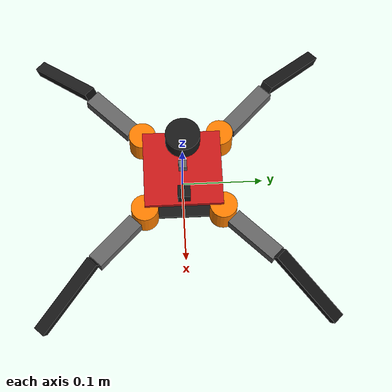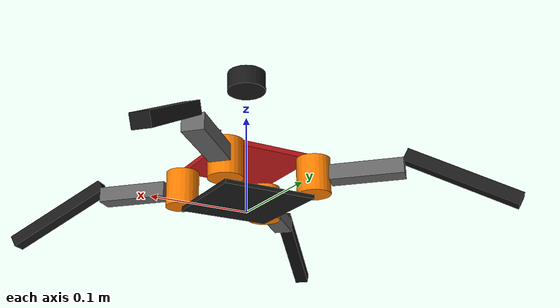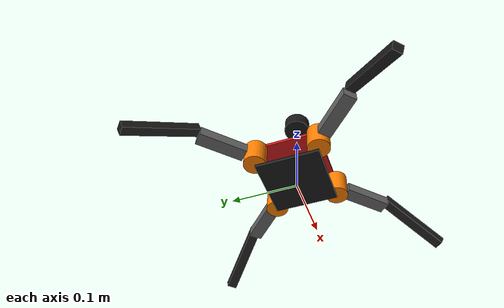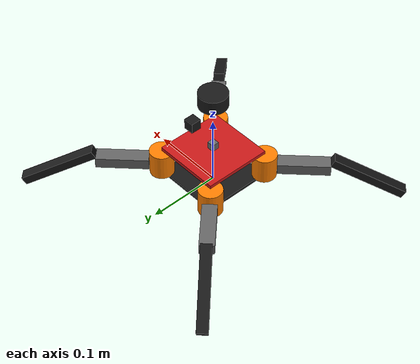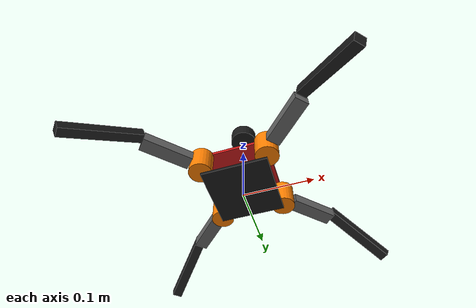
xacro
<?xml version="1.0"?>
<robot name="spider" xmlns:xacro="http://www.ros.org/wiki/xacro">

  <material name="red"><color rgba="0.8 0.1 0.1 1"/></material>
  <material name="black"><color rgba="0.1 0.1 0.1 1"/></material>
  <material name="grey"><color rgba="0.4 0.4 0.4 1"/></material>
  <material name="orange"><color rgba="1 0.5 0 1"/></material>

  <!-- Base footprint with minimal inertial properties -->
  <link name="base_footprint">
    <inertial>
      <mass value="0.001"/>
      <inertia ixx="1e-6" ixy="0" ixz="0" iyy="1e-6" iyz="0" izz="1e-6"/>
    </inertial>
  </link>

  <joint name="base_joint" type="fixed">
    <parent link="base_footprint"/>
    <child link="base_link"/>
    <origin xyz="0 0 0.05" rpy="0 0 0"/>
  </joint>

  <link name="base_link">
    <visual>
      <geometry><box size="0.095 0.095 0.005"/></geometry>
      <material name="red"/>
    </visual>
    <collision>
      <geometry><box size="0.095 0.095 0.005"/></geometry>
    </collision>
    <inertial>
      <mass value="0.3"/>
      <inertia ixx="0.0002" ixy="0" ixz="0" iyy="0.0002" iyz="0" izz="0.0004"/>
    </inertial>
  </link>

  <link name="bottom_plate">
    <visual>
      <geometry><box size="0.095 0.095 0.004"/></geometry>
      <material name="black"/>
    </visual>
    <collision>
      <geometry><box size="0.095 0.095 0.004"/></geometry>
    </collision>
    <inertial>
      <mass value="0.2"/>
      <inertia ixx="0.00015" ixy="0" ixz="0" iyy="0.00015" iyz="0" izz="0.0003"/>
    </inertial>
  </link>

  <joint name="chassis_joint" type="fixed">
    <parent link="base_link"/>
    <child link="bottom_plate"/>
    <origin xyz="0 0 -0.0405" rpy="0 0 0"/>
  </joint>

  <!-- Leg Macro -->
  <xacro:macro name="spider_leg" params="prefix x_dist y_dist yaw_angle">
    <link name="${prefix}_hip">
      <visual>
        <geometry><cylinder radius="0.0165" length="0.036"/></geometry>
        <material name="orange"/>
      </visual>
      <collision>
        <geometry><cylinder radius="0.0165" length="0.036"/></geometry>
      </collision>
      <inertial><mass value="0.05"/><inertia ixx="1e-4" ixy="0" ixz="0" iyy="1e-4" iyz="0" izz="1e-4"/></inertial>
    </link>

    <joint name="${prefix}_hip_yaw" type="revolute">
      <parent link="base_link"/>
      <child link="${prefix}_hip"/>
      <origin xyz="${x_dist} ${y_dist} -0.0205" rpy="0 0 ${yaw_angle}"/>
      <axis xyz="0 0 1"/>
      <limit lower="-1.57" upper="1.57" effort="5.0" velocity="2.0"/>
    </joint>

    <link name="${prefix}_limb">
      <visual>
        <origin xyz="0.035 0 0" rpy="0 0 0"/>
        <geometry><box size="0.07 0.02 0.015"/></geometry>
        <material name="grey"/>
      </visual>
      <collision>
        <origin xyz="0.035 0 0" rpy="0 0 0"/>
        <geometry><box size="0.07 0.02 0.015"/></geometry>
      </collision>
      <inertial><mass value="0.05"/><inertia ixx="1e-4" ixy="0" ixz="0" iyy="1e-4" iyz="0" izz="1e-4"/></inertial>
    </link>

    <joint name="${prefix}_hip_pitch" type="revolute">
      <parent link="${prefix}_hip"/><child link="${prefix}_limb"/>
      <origin xyz="0.0165 0 0" rpy="0 0 0"/>
      <axis xyz="0 1 0"/>
      <limit lower="-1.57" upper="1.57" effort="5.0" velocity="2.0"/>
    </joint>

    <link name="${prefix}_leg">
      <visual>
        <origin xyz="0.05 0 -0.015" rpy="0 0.5 0"/>
        <geometry><box size="0.11 0.015 0.012"/></geometry>
        <material name="black"/>
      </visual>
      <collision>
        <origin xyz="0.05 0 -0.015" rpy="0 0.5 0"/>
        <geometry><box size="0.11 0.015 0.012"/></geometry>
      </collision>
      <inertial><mass value="0.05"/><inertia ixx="1e-4" ixy="0" ixz="0" iyy="1e-4" iyz="0" izz="1e-4"/></inertial>
    </link>

    <joint name="${prefix}_knee" type="revolute">
      <parent link="${prefix}_limb"/><child link="${prefix}_leg"/>
      <origin xyz="0.07 0 0" rpy="0 0 0"/>
      <axis xyz="0 1 0"/>
      <limit lower="-2.5" upper="2.5" effort="5.0" velocity="2.0"/>
    </joint>

    <gazebo reference="${prefix}_leg">
      <mu1>3.0</mu1><mu2>3.0</mu2>
      <kp>1000000.0</kp><kd>10.0</kd>
    </gazebo>
  </xacro:macro>

  <!-- Instantiate 4 legs -->
  <xacro:spider_leg prefix="FL" x_dist="0.0475"  y_dist="0.0475"  yaw_angle="0.785"/>
  <xacro:spider_leg prefix="FR" x_dist="0.0475"  y_dist="-0.0475" yaw_angle="-0.785"/>
  <xacro:spider_leg prefix="RL" x_dist="-0.0475" y_dist="0.0475"  yaw_angle="2.355"/>
  <xacro:spider_leg prefix="RR" x_dist="-0.0475" y_dist="-0.0475" yaw_angle="-2.355"/>

  <!-- Camera -->
  <link name="camera_link">
    <visual>
      <origin xyz="0 0 0" rpy="0 0 0"/>
      <geometry><box size="0.015 0.015 0.015"/></geometry>
      <material name="black"/>
    </visual>
  </link>

  <joint name="camera_joint" type="fixed">
    <parent link="base_link"/>
    <child link="camera_link"/>
    <origin xyz="0.04 0 0.02" rpy="0 0 0"/>
  </joint>

  <gazebo reference="camera_link">
    <sensor type="camera" name="spider_camera">
      <update_rate>30.0</update_rate>
      <visualize>true</visualize>
      <topic>camera/image_raw</topic>
      <camera name="head">
        <horizontal_fov>2.094</horizontal_fov>
        <image>
          <width>1280</width>
          <height>720</height>
          <format>R8G8B8</format>
        </image>
        <clip>
          <near>0.01</near>
          <far>100</far>
        </clip>
      </camera>
    </sensor>
  </gazebo>

  <!-- LiDAR -->
  <link name="lidar_link">
    <visual>
      <origin xyz="0 0 0" rpy="0 0 3.1415"/>
      <geometry><cylinder radius="0.02" length="0.02"/></geometry>
      <material name="black"/>
    </visual>
    <collision>
      <origin xyz="0 0 0" rpy="-1.57 0 3.1415"/>
      <geometry><cylinder radius="0.02" length="0.02"/></geometry>
    </collision>
    <inertial>
      <mass value="0.1"/>
      <inertia ixx="1e-4" ixy="0" ixz="0" iyy="1e-4" iyz="0" izz="1e-4"/>
    </inertial>
  </link>

  <joint name="lidar_joint" type="fixed">
    <parent link="base_link"/>
    <child link="lidar_link"/>
    <origin xyz="0 0 0.09" rpy="0 0 3.1415"/>
  </joint>

  <gazebo reference="lidar_link">
      <sensor name='gpu_lidar' type='gpu_lidar'>
          <pose>0 0 0 0 0 0</pose>
          <topic>scan</topic>
          <update_rate>10</update_rate>
          <gz_frame_id>lidar_link</gz_frame_id>
          <lidar>
              <scan>
              <horizontal>
                  <samples>360</samples>
                  <resolution>1</resolution>
                  <min_angle>-3.14159</min_angle>
                  <max_angle>3.14159</max_angle>
              </horizontal>
              <vertical>
                  <samples>1</samples>
                  <resolution>1</resolution>
                  <min_angle>0.0</min_angle>
                  <max_angle>0.0</max_angle>
              </vertical>
              </scan>
              <range>
                  <min>0.05</min>
                  <max>10.0</max>
                  <resolution>0.01</resolution>
              </range>
              <noise>
                  <type>gaussian</type>
                  <mean>0.0</mean>
                  <stddev>0.01</stddev>
              </noise>
          </lidar>
          <always_on>true</always_on>
          <visualize>true</visualize>
      </sensor>
  </gazebo>

  <gazebo>
    <plugin filename="gz-sim-sensors-system" name="gz::sim::systems::Sensors">
      <render_engine>ogre2</render_engine>
    </plugin>
  </gazebo>

  <!-- IMU -->
  <link name="imu_link">
    <visual>
      <origin xyz="0 0 0" rpy="0 0 0"/>
      <geometry><box size="0.01 0.01 0.01"/></geometry>
      <material name="grey"/>
    </visual>
    <inertial>
      <mass value="0.01"/>
      <inertia ixx="1e-5" ixy="0" ixz="0" iyy="1e-5" iyz="0" izz="1e-5"/>
    </inertial>
  </link>

  <joint name="imu_joint" type="fixed">
    <parent link="base_link"/>
    <child link="imu_link"/>
    <origin xyz="0 0 0.01" rpy="0 0 0"/>
  </joint>

  <gazebo reference="imu_link">
    <sensor name="imu" type="imu">
      <always_on>1</always_on>
      <update_rate>100</update_rate>
      <visualize>true</visualize>
      <topic>imu/data</topic>
      <enable_metrics>true</enable_metrics>
    </sensor>
  </gazebo>

  <!-- ROS2 Control Configuration -->
  <ros2_control name="gz_ros2_control" type="system">
    <hardware>
      <plugin>gz_ros2_control/GazeboSimSystem</plugin>
    </hardware>

    <!-- Joint Definitions -->
    <xacro:macro name="joint_interface" params="name init_val">
      <joint name="${name}">
        <command_interface name="position"/>
        <state_interface name="position">
          <param name="initial_value">${init_val}</param>
        </state_interface>
        <state_interface name="velocity"/>
        <state_interface name="effort"/>
      </joint>
    </xacro:macro>

    <!-- All 12 joints -->
    <xacro:joint_interface name="FL_hip_yaw" init_val="0.0"/>
    <xacro:joint_interface name="FL_hip_pitch" init_val="-0.9"/>
    <xacro:joint_interface name="FL_knee" init_val="1.6"/>

    <xacro:joint_interface name="FR_hip_yaw" init_val="0.0"/>
    <xacro:joint_interface name="FR_hip_pitch" init_val="-0.9"/>
    <xacro:joint_interface name="FR_knee" init_val="1.6"/>

    <xacro:joint_interface name="RL_hip_yaw" init_val="0.0"/>
    <xacro:joint_interface name="RL_hip_pitch" init_val="-0.9"/>
    <xacro:joint_interface name="RL_knee" init_val="1.6"/>

    <xacro:joint_interface name="RR_hip_yaw" init_val="0.0"/>
    <xacro:joint_interface name="RR_hip_pitch" init_val="-0.9"/>
    <xacro:joint_interface name="RR_knee" init_val="1.6"/>
  </ros2_control>

  <!-- Gazebo ROS Control Plugin -->
  <gazebo>
    <plugin filename="libgz_ros2_control-system.so" name="gz_ros2_control::GazeboSimROS2ControlPlugin">
      <parameters>$(find dummy_spider)/config/ros2_controllers.yaml</parameters>
      <controller_manager_node_name>controller_manager</controller_manager_node_name>
    </plugin>
  </gazebo>

  <!-- Odometry Gazebo Plugin -->
  <gazebo>
    <plugin filename="gz-sim-odometry-publisher-system"
            name="gz::sim::systems::OdometryPublisher">
      <frame_id>odom</frame_id>
      <odom_topic>odom</odom_topic>
      <tf_topic>tf</tf_topic>
      <robot_base_frame>base_link</robot_base_frame>
      <odom_publish_frequency>50</odom_publish_frequency>
    </plugin>
  </gazebo>

</robot>
